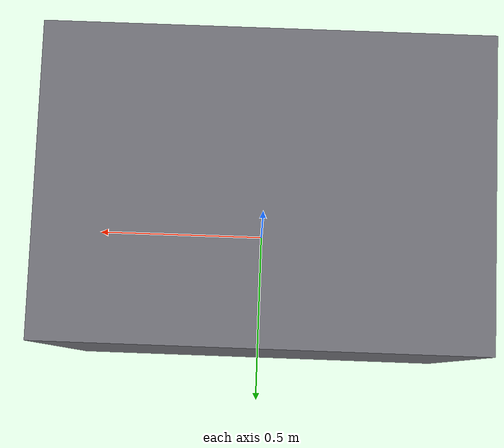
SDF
<?xml version="1.0"?>
<sdf version="1.6">
  <!-- Pedestal box. Link origin at bottom-center on ground; geometry centered at z=height/2. -->
  <model name="robot_pedestal">
    <static>true</static>
    <link name="pedestal_link">
      <visual name="visual">
        <pose>0 0 0.43 0 0 0</pose>
        <geometry>
          <box>
            <size>1.05 0.74 0.86</size>
          </box>
        </geometry>
        <material>
          <ambient>0.35 0.35 0.38 1</ambient>
          <diffuse>0.45 0.45 0.48 1</diffuse>
        </material>
      </visual>
      <collision name="collision">
        <pose>0 0 0.43 0 0 0</pose>
        <geometry>
          <box>
            <size>1.05 0.74 0.86</size>
          </box>
        </geometry>
      </collision>
    </link>
  </model>
</sdf>
